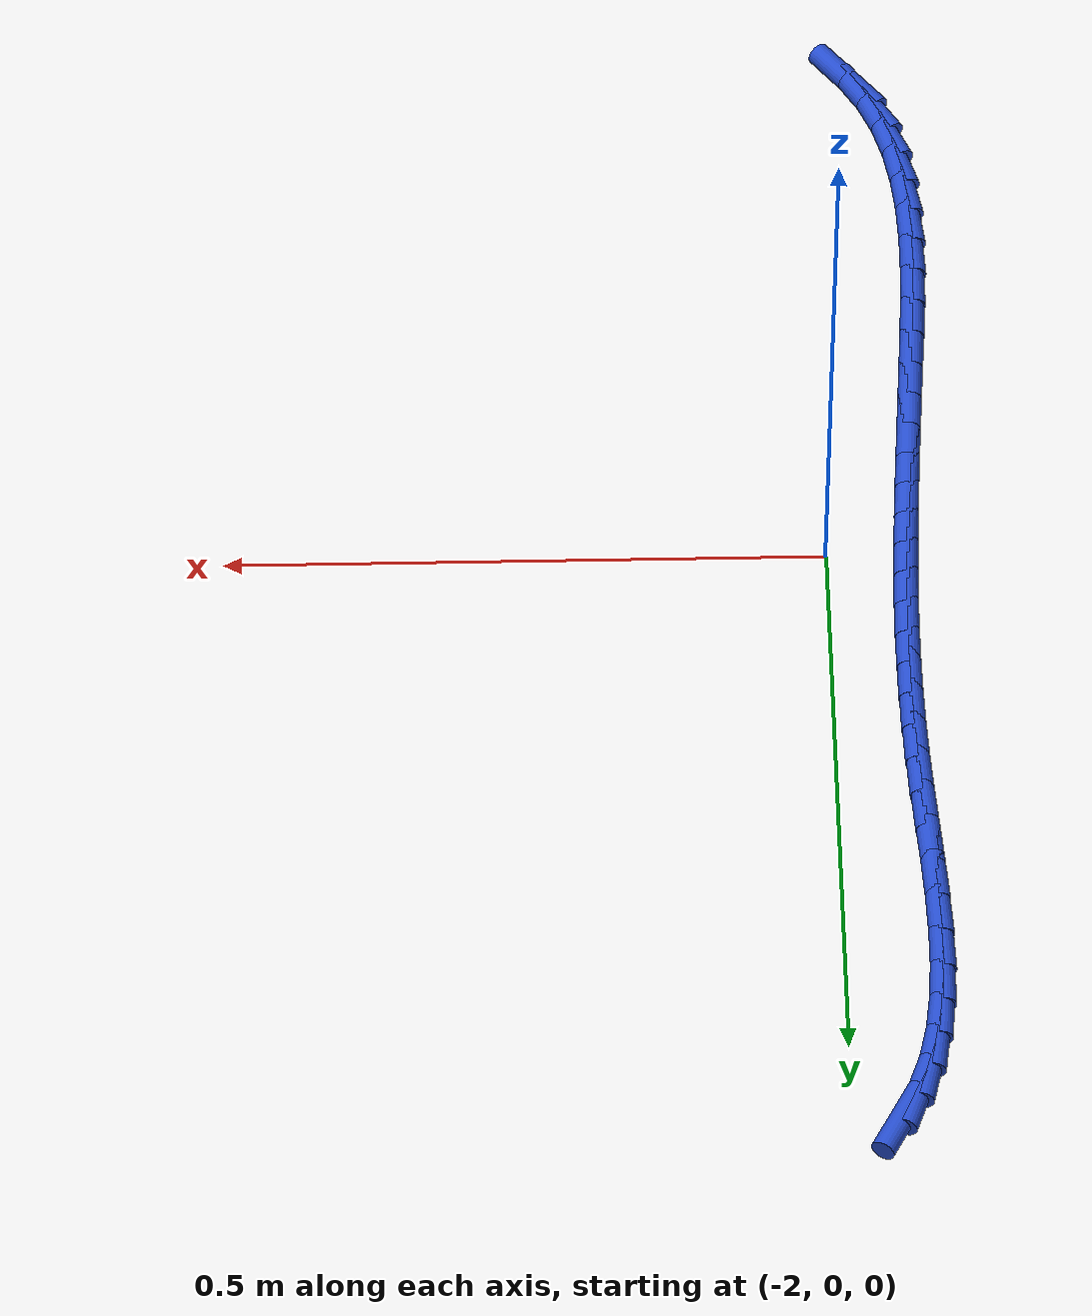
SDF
<sdf version="1.6">
 <world name="default">
  <model name="ground_plane">
   <static>1</static>
   <link name="link">
    <collision name="collision">
     <geometry><plane><normal>0 0 1</normal><size>100 100</size></plane></geometry>
     <surface><friction><ode><mu>100</mu><mu2>50</mu2></ode></friction></surface>
    </collision>
    <visual name="visual">
     <cast_shadows>0</cast_shadows>
     <geometry><plane><normal>0 0 1</normal><size>100 100</size></plane></geometry>
     <material>
      <script><uri>file://media/materials/scripts/gazebo.material</uri><name>Gazebo/WhiteGlow</name></script>
     </material>
    </visual>
   </link>
  </model>
  <model name="line">
   <link name="link_88">
    <pose>-2.0417215647452553 0.5739312853381434 0.01 0 1.57 1.0758640000113546</pose>
    <collision name="collision">
     <geometry><cylinder><radius>0.01</radius><length>0.08</length></cylinder></geometry>
    </collision>
    <visual name="visual">
     <material>
      <script><name>Gazebo/Blue</name><uri>file://media/materials/scripts/gazebo.material</uri></script>
     </material>
     <geometry><cylinder><radius>0.01</radius><length>0.08</length></cylinder></geometry>
    </visual>
   </link>
   <link name="link_89">
    <pose>-2.05522681316527 0.54890954162657 0.01 0 1.57 1.2237423726931465</pose>
    <collision name="collision">
     <geometry><cylinder><radius>0.01</radius><length>0.08</length></cylinder></geometry>
    </collision>
    <visual name="visual">
     <material>
      <script><name>Gazebo/Blue</name><uri>file://media/materials/scripts/gazebo.material</uri></script>
     </material>
     <geometry><cylinder><radius>0.01</radius><length>0.08</length></cylinder></geometry>
    </visual>
   </link>
   <link name="link_90">
    <pose>-2.0651856387803122 0.5213756593891107 0.01 0 1.57 1.3441938161653084</pose>
    <collision name="collision">
     <geometry><cylinder><radius>0.01</radius><length>0.08</length></cylinder></geometry>
    </collision>
    <visual name="visual">
     <material>
      <script><name>Gazebo/Blue</name><uri>file://media/materials/scripts/gazebo.material</uri></script>
     </material>
     <geometry><cylinder><radius>0.01</radius><length>0.08</length></cylinder></geometry>
    </visual>
   </link>
   <link name="link_91">
    <pose>-2.072034080967525 0.4916724606240116 0.01 0 1.57 1.4391754414377698</pose>
    <collision name="collision">
     <geometry><cylinder><radius>0.01</radius><length>0.08</length></cylinder></geometry>
    </collision>
    <visual name="visual">
     <material>
      <script><name>Gazebo/Blue</name><uri>file://media/materials/scripts/gazebo.material</uri></script>
     </material>
     <geometry><cylinder><radius>0.01</radius><length>0.08</length></cylinder></geometry>
    </visual>
   </link>
   <link name="link_92">
    <pose>-2.0762081791040465 0.4601427673295173 0.01 0 1.57 1.5122267324918488</pose>
    <collision name="collision">
     <geometry><cylinder><radius>0.01</radius><length>0.08</length></cylinder></geometry>
    </collision>
    <visual name="visual">
     <material>
      <script><name>Gazebo/Blue</name><uri>file://media/materials/scripts/gazebo.material</uri></script>
     </material>
     <geometry><cylinder><radius>0.01</radius><length>0.08</length></cylinder></geometry>
    </visual>
   </link>
   <link name="link_93">
    <pose>-2.078143972567019 0.4271294015038745 0.01 0 1.57 1.566886780610127</pose>
    <collision name="collision">
     <geometry><cylinder><radius>0.01</radius><length>0.08</length></cylinder></geometry>
    </collision>
    <visual name="visual">
     <material>
      <script><name>Gazebo/Blue</name><uri>file://media/materials/scripts/gazebo.material</uri></script>
     </material>
     <geometry><cylinder><radius>0.01</radius><length>0.08</length></cylinder></geometry>
    </visual>
   </link>
   <link name="link_94">
    <pose>-2.0782775007335843 0.39297518514532814 0.01 0 1.57 -1.5355428818058645</pose>
    <collision name="collision">
     <geometry><cylinder><radius>0.01</radius><length>0.08</length></cylinder></geometry>
    </collision>
    <visual name="visual">
     <material>
      <script><name>Gazebo/Blue</name><uri>file://media/materials/scripts/gazebo.material</uri></script>
     </material>
     <geometry><cylinder><radius>0.01</radius><length>0.08</length></cylinder></geometry>
    </visual>
   </link>
   <link name="link_95">
    <pose>-2.0770448029808817 0.3580229402521234 0.01 0 1.57 -1.5097865679576585</pose>
    <collision name="collision">
     <geometry><cylinder><radius>0.01</radius><length>0.08</length></cylinder></geometry>
    </collision>
    <visual name="visual">
     <material>
      <script><name>Gazebo/Blue</name><uri>file://media/materials/scripts/gazebo.material</uri></script>
     </material>
     <geometry><cylinder><radius>0.01</radius><length>0.08</length></cylinder></geometry>
    </visual>
   </link>
   <link name="link_96">
    <pose>-2.074881918686053 0.32261548882250646 0.01 0 1.57 -1.4961312274144734</pose>
    <collision name="collision">
     <geometry><cylinder><radius>0.01</radius><length>0.08</length></cylinder></geometry>
    </collision>
    <visual name="visual">
     <material>
      <script><name>Gazebo/Blue</name><uri>file://media/materials/scripts/gazebo.material</uri></script>
     </material>
     <geometry><cylinder><radius>0.01</radius><length>0.08</length></cylinder></geometry>
    </visual>
   </link>
   <link name="link_97">
    <pose>-2.072224887226239 0.28709565285472277 0.01 0 1.57 -1.4940083746884496</pose>
    <collision name="collision">
     <geometry><cylinder><radius>0.01</radius><length>0.08</length></cylinder></geometry>
    </collision>
    <visual name="visual">
     <material>
      <script><name>Gazebo/Blue</name><uri>file://media/materials/scripts/gazebo.material</uri></script>
     </material>
     <geometry><cylinder><radius>0.01</radius><length>0.08</length></cylinder></geometry>
    </visual>
   </link>
   <link name="link_98">
    <pose>-2.06950974797858 0.2518062543470172 0.01 0 1.57 -1.5035500490156584</pose>
    <collision name="collision">
     <geometry><cylinder><radius>0.01</radius><length>0.08</length></cylinder></geometry>
    </collision>
    <visual name="visual">
     <material>
      <script><name>Gazebo/Blue</name><uri>file://media/materials/scripts/gazebo.material</uri></script>
     </material>
     <geometry><cylinder><radius>0.01</radius><length>0.08</length></cylinder></geometry>
    </visual>
   </link>
   <link name="link_99">
    <pose>-2.0671716360558876 0.2170892919428723 0.01 0 1.57 -1.5215404942034805</pose>
    <collision name="collision">
     <geometry><cylinder><radius>0.01</radius><length>0.08</length></cylinder></geometry>
    </collision>
    <visual name="visual">
     <material>
      <script><name>Gazebo/Blue</name><uri>file://media/materials/scripts/gazebo.material</uri></script>
     </material>
     <geometry><cylinder><radius>0.01</radius><length>0.08</length></cylinder></geometry>
    </visual>
   </link>
   <link name="link_100">
    <pose>-2.0654987200367043 0.18315294766596457 0.01 0 1.57 -1.5398743364828942</pose>
    <collision name="collision">
     <geometry><cylinder><radius>0.01</radius><length>0.08</length></cylinder></geometry>
    </collision>
    <visual name="visual">
     <material>
      <script><name>Gazebo/Blue</name><uri>file://media/materials/scripts/gazebo.material</uri></script>
     </material>
     <geometry><cylinder><radius>0.01</radius><length>0.08</length></cylinder></geometry>
    </visual>
   </link>
   <link name="link_101">
    <pose>-2.0644709096916953 0.14992472636471008 0.01 0 1.57 -1.5572621125437778</pose>
    <collision name="collision">
     <geometry><cylinder><radius>0.01</radius><length>0.08</length></cylinder></geometry>
    </collision>
    <visual name="visual">
     <material>
      <script><name>Gazebo/Blue</name><uri>file://media/materials/scripts/gazebo.material</uri></script>
     </material>
     <geometry><cylinder><radius>0.01</radius><length>0.08</length></cylinder></geometry>
    </visual>
   </link>
   <link name="link_102">
    <pose>-2.0640292891259246 0.11729678117049644 0.01 0 1.57 1.5681309544443975</pose>
    <collision name="collision">
     <geometry><cylinder><radius>0.01</radius><length>0.08</length></cylinder></geometry>
    </collision>
    <visual name="visual">
     <material>
      <script><name>Gazebo/Blue</name><uri>file://media/materials/scripts/gazebo.material</uri></script>
     </material>
     <geometry><cylinder><radius>0.01</radius><length>0.08</length></cylinder></geometry>
    </visual>
   </link>
   <link name="link_103">
    <pose>-2.0641149424444554 0.08516126521471024 0.01 0 1.57 1.55334943526708</pose>
    <collision name="collision">
     <geometry><cylinder><radius>0.01</radius><length>0.08</length></cylinder></geometry>
    </collision>
    <visual name="visual">
     <material>
      <script><name>Gazebo/Blue</name><uri>file://media/materials/scripts/gazebo.material</uri></script>
     </material>
     <geometry><cylinder><radius>0.01</radius><length>0.08</length></cylinder></geometry>
    </visual>
   </link>
   <link name="link_104">
    <pose>-2.0646689537523546 0.05341033162873849 0.01 0 1.57 1.540194986562472</pose>
    <collision name="collision">
     <geometry><cylinder><radius>0.01</radius><length>0.08</length></cylinder></geometry>
    </collision>
    <visual name="visual">
     <material>
      <script><name>Gazebo/Blue</name><uri>file://media/materials/scripts/gazebo.material</uri></script>
     </material>
     <geometry><cylinder><radius>0.01</radius><length>0.08</length></cylinder></geometry>
    </visual>
   </link>
   <link name="link_105">
    <pose>-2.065632407154684 0.021936133543968152 0.01 0 1.57 1.528847890242219</pose>
    <collision name="collision">
     <geometry><cylinder><radius>0.01</radius><length>0.08</length></cylinder></geometry>
    </collision>
    <visual name="visual">
     <material>
      <script><name>Gazebo/Blue</name><uri>file://media/materials/scripts/gazebo.material</uri></script>
     </material>
     <geometry><cylinder><radius>0.01</radius><length>0.08</length></cylinder></geometry>
    </visual>
   </link>
   <link name="link_106">
    <pose>-2.0669463867565083 -0.009369175908214587 0.01 0 1.57 1.5194531865786107</pose>
    <collision name="collision">
     <geometry><cylinder><radius>0.01</radius><length>0.08</length></cylinder></geometry>
    </collision>
    <visual name="visual">
     <material>
      <script><name>Gazebo/Blue</name><uri>file://media/materials/scripts/gazebo.material</uri></script>
     </material>
     <geometry><cylinder><radius>0.01</radius><length>0.08</length></cylinder></geometry>
    </visual>
   </link>
   <link name="link_107">
    <pose>-2.068551976662894 -0.040613443596421245 0.01 0 1.57 1.51211588893617</pose>
    <collision name="collision">
     <geometry><cylinder><radius>0.01</radius><length>0.08</length></cylinder></geometry>
    </collision>
    <visual name="visual">
     <material>
      <script><name>Gazebo/Blue</name><uri>file://media/materials/scripts/gazebo.material</uri></script>
     </material>
     <geometry><cylinder><radius>0.01</radius><length>0.08</length></cylinder></geometry>
    </visual>
   </link>
   <link name="link_108">
    <pose>-2.070390260978903 -0.07190451638926562 0.01 0 1.57 1.506898175295797</pose>
    <collision name="collision">
     <geometry><cylinder><radius>0.01</radius><length>0.08</length></cylinder></geometry>
    </collision>
    <visual name="visual">
     <material>
      <script><name>Gazebo/Blue</name><uri>file://media/materials/scripts/gazebo.material</uri></script>
     </material>
     <geometry><cylinder><radius>0.01</radius><length>0.08</length></cylinder></geometry>
    </visual>
   </link>
   <link name="link_109">
    <pose>-2.0724023238096008 -0.10335024115536075 0.01 0 1.57 1.503818622415468</pose>
    <collision name="collision">
     <geometry><cylinder><radius>0.01</radius><length>0.08</length></cylinder></geometry>
    </collision>
    <visual name="visual">
     <material>
      <script><name>Gazebo/Blue</name><uri>file://media/materials/scripts/gazebo.material</uri></script>
     </material>
     <geometry><cylinder><radius>0.01</radius><length>0.08</length></cylinder></geometry>
    </visual>
   </link>
   <link name="link_110">
    <pose>-2.0745292492600518 -0.13505846476331967 0.01 0 1.57 1.502853388625598</pose>
    <collision name="collision">
     <geometry><cylinder><radius>0.01</radius><length>0.08</length></cylinder></geometry>
    </collision>
    <visual name="visual">
     <material>
      <script><name>Gazebo/Blue</name><uri>file://media/materials/scripts/gazebo.material</uri></script>
     </material>
     <geometry><cylinder><radius>0.01</radius><length>0.08</length></cylinder></geometry>
    </visual>
   </link>
   <link name="link_111">
    <pose>-2.07671212143532 -0.1671370340817554 0.01 0 1.57 1.50393912301961</pose>
    <collision name="collision">
     <geometry><cylinder><radius>0.01</radius><length>0.08</length></cylinder></geometry>
    </collision>
    <visual name="visual">
     <material>
      <script><name>Gazebo/Blue</name><uri>file://media/materials/scripts/gazebo.material</uri></script>
     </material>
     <geometry><cylinder><radius>0.01</radius><length>0.08</length></cylinder></geometry>
    </visual>
   </link>
   <link name="link_112">
    <pose>-2.0788920244404707 -0.1996937959792818 0.01 0 1.57 1.5069991936408864</pose>
    <collision name="collision">
     <geometry><cylinder><radius>0.01</radius><length>0.08</length></cylinder></geometry>
    </collision>
    <visual name="visual">
     <material>
      <script><name>Gazebo/Blue</name><uri>file://media/materials/scripts/gazebo.material</uri></script>
     </material>
     <geometry><cylinder><radius>0.01</radius><length>0.08</length></cylinder></geometry>
    </visual>
   </link>
   <link name="link_113">
    <pose>-2.081009249965263 -0.23283560375185905 0.01 0 1.57 1.5150641291504694</pose>
    <collision name="collision">
     <geometry><cylinder><radius>0.01</radius><length>0.08</length></cylinder></geometry>
    </collision>
    <visual name="visual">
     <material>
      <script><name>Gazebo/Blue</name><uri>file://media/materials/scripts/gazebo.material</uri></script>
     </material>
     <geometry><cylinder><radius>0.01</radius><length>0.08</length></cylinder></geometry>
    </visual>
   </link>
   <link name="link_114">
    <pose>-2.0828887642392897 -0.2665247094708862 0.01 0 1.57 1.5344891599688262</pose>
    <collision name="collision">
     <geometry><cylinder><radius>0.01</radius><length>0.08</length></cylinder></geometry>
    </collision>
    <visual name="visual">
     <material>
      <script><name>Gazebo/Blue</name><uri>file://media/materials/scripts/gazebo.material</uri></script>
     </material>
     <geometry><cylinder><radius>0.01</radius><length>0.08</length></cylinder></geometry>
    </visual>
   </link>
   <link name="link_115">
    <pose>-2.084120250724153 -0.3004283551005439 0.01 0 1.57 1.5665159208366497</pose>
    <collision name="collision">
     <geometry><cylinder><radius>0.01</radius><length>0.08</length></cylinder></geometry>
    </collision>
    <visual name="visual">
     <material>
      <script><name>Gazebo/Blue</name><uri>file://media/materials/scripts/gazebo.material</uri></script>
     </material>
     <geometry><cylinder><radius>0.01</radius><length>0.08</length></cylinder></geometry>
    </visual>
   </link>
   <link name="link_116">
    <pose>-2.08426471302679 -0.3341778222706782 0.01 0 1.57 -1.529240340247697</pose>
    <collision name="collision">
     <geometry><cylinder><radius>0.01</radius><length>0.08</length></cylinder></geometry>
    </collision>
    <visual name="visual">
     <material>
      <script><name>Gazebo/Blue</name><uri>file://media/materials/scripts/gazebo.material</uri></script>
     </material>
     <geometry><cylinder><radius>0.01</radius><length>0.08</length></cylinder></geometry>
    </visual>
   </link>
   <link name="link_117">
    <pose>-2.0828831547541387 -0.3674043926111356 0.01 0 1.57 -1.4676663759861448</pose>
    <collision name="collision">
     <geometry><cylinder><radius>0.01</radius><length>0.08</length></cylinder></geometry>
    </collision>
    <visual name="visual">
     <material>
      <script><name>Gazebo/Blue</name><uri>file://media/materials/scripts/gazebo.material</uri></script>
     </material>
     <geometry><cylinder><radius>0.01</radius><length>0.08</length></cylinder></geometry>
    </visual>
   </link>
   <link name="link_118">
    <pose>-2.0795365795131358 -0.3997393477517624 0.01 0 1.57 -1.3878090628569906</pose>
    <collision name="collision">
     <geometry><cylinder><radius>0.01</radius><length>0.08</length></cylinder></geometry>
    </collision>
    <visual name="visual">
     <material>
      <script><name>Gazebo/Blue</name><uri>file://media/materials/scripts/gazebo.material</uri></script>
     </material>
     <geometry><cylinder><radius>0.01</radius><length>0.08</length></cylinder></geometry>
    </visual>
   </link>
   <link name="link_119">
    <pose>-2.0737859909107197 -0.4308139693224057 0.01 0 1.57 -1.2868361181666856</pose>
    <collision name="collision">
     <geometry><cylinder><radius>0.01</radius><length>0.08</length></cylinder></geometry>
    </collision>
    <visual name="visual">
     <material>
      <script><name>Gazebo/Blue</name><uri>file://media/materials/scripts/gazebo.material</uri></script>
     </material>
     <geometry><cylinder><radius>0.01</radius><length>0.08</length></cylinder></geometry>
    </visual>
   </link>
   <link name="link_120">
    <pose>-2.065192392553827 -0.46025953895291033 0.01 0 1.57 -1.1624852299186959</pose>
    <collision name="collision">
     <geometry><cylinder><radius>0.01</radius><length>0.08</length></cylinder></geometry>
    </collision>
    <visual name="visual">
     <material>
      <script><name>Gazebo/Blue</name><uri>file://media/materials/scripts/gazebo.material</uri></script>
     </material>
     <geometry><cylinder><radius>0.01</radius><length>0.08</length></cylinder></geometry>
    </visual>
   </link>
   <link name="link_121">
    <pose>-2.053317538822523 -0.4877079321441596 0.01 0 1.57 -1.0244724979917714</pose>
    <collision name="collision">
     <geometry><cylinder><radius>0.01</radius><length>0.08</length></cylinder></geometry>
    </collision>
    <visual name="visual">
     <material>
      <script><name>Gazebo/Blue</name><uri>file://media/materials/scripts/gazebo.material</uri></script>
     </material>
     <geometry><cylinder><radius>0.01</radius><length>0.08</length></cylinder></geometry>
    </visual>
   </link>
   <link name="link_122">
    <pose>-2.0379543594671077 -0.5129738870376892 0.01 0 1.57 -0.9004847507041264</pose>
    <collision name="collision">
     <geometry><cylinder><radius>0.01</radius><length>0.08</length></cylinder></geometry>
    </collision>
    <visual name="visual">
     <material>
      <script><name>Gazebo/Blue</name><uri>file://media/materials/scripts/gazebo.material</uri></script>
     </material>
     <geometry><cylinder><radius>0.01</radius><length>0.08</length></cylinder></geometry>
    </visual>
   </link>
  </model>
 </world>
</sdf>
